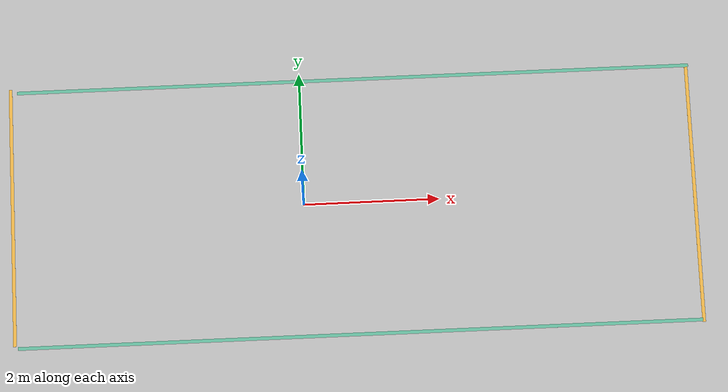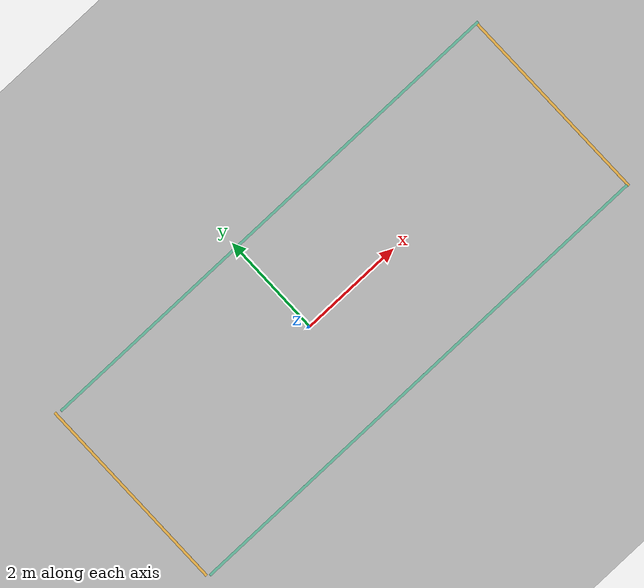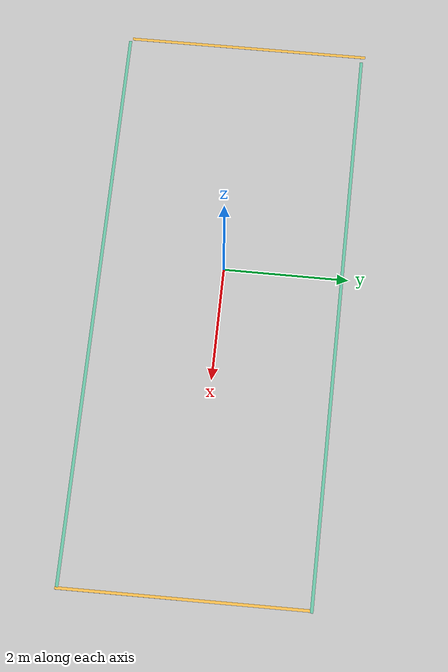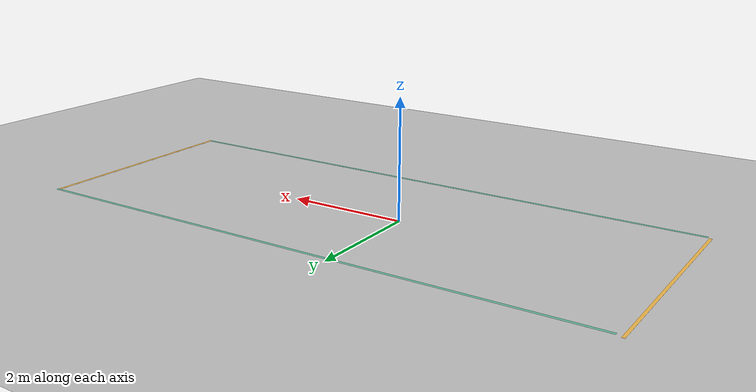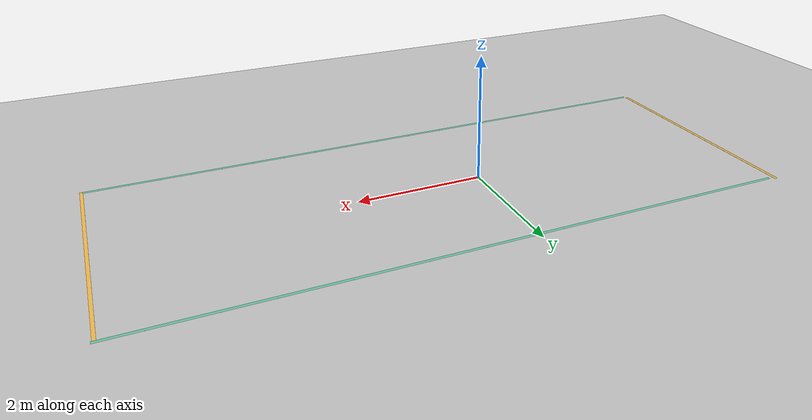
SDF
<sdf version="1.7">
 <world name="default">
  <light name="sun" type="directional">
   <pose>0 0 10 0 -0 0</pose>
   <diffuse>0.8 0.8 0.8 1</diffuse>
   <specular>0.2 0.2 0.2 1</specular>
   <attenuation>
    <range>1000</range>
    <constant>0.9</constant>
    <linear>0.01</linear>
    <quadratic>0.001</quadratic>
   </attenuation>
   <direction>-0.5 0.1 -0.9</direction>
   <spot><inner_angle>0</inner_angle><outer_angle>0</outer_angle><falloff>0</falloff></spot>
  </light>
  <model name="ground_plane">
   <static>1</static>
   <link name="link">
    <collision name="collision">
     <geometry><plane><normal>0 0 1</normal><size>100 100</size></plane></geometry>
     <surface>
      <contact><collide_bitmask>65535</collide_bitmask></contact>
      <friction><ode><mu>100</mu><mu2>50</mu2></ode></friction>
     </surface>
    </collision>
    <visual name="visual">
     <cast_shadows>0</cast_shadows>
     <geometry><plane><normal>0 0 1</normal><size>100 100</size></plane></geometry>
     <material>
      <script><uri>file://media/materials/scripts/gazebo.material</uri><name>Gazebo/Grey</name></script>
     </material>
    </visual>
   </link>
  </model>
  <gravity>0 0 -9.8</gravity>
  <magnetic_field>6e-06 2.3e-05 -4.2e-05</magnetic_field>
  <atmosphere type="adiabatic"/>
  <physics type="ode">
   <max_step_size>0.001</max_step_size>
   <real_time_factor>1</real_time_factor>
   <real_time_update_rate>1000</real_time_update_rate>
  </physics>
  <scene><ambient>0.4 0.4 0.4 1</ambient><background>0.7 0.7 0.7 1</background><shadows>1</shadows></scene>
  <spherical_coordinates>
   <surface_model>EARTH_WGS84</surface_model>
   <latitude_deg>0</latitude_deg>
   <longitude_deg>0</longitude_deg>
   <elevation>0</elevation>
   <heading_deg>0</heading_deg>
  </spherical_coordinates>
  <model name="sari_cizgi">
   <pose>4.45006 0.456853 0 0 -0 0</pose>
   <link name="Wall_0">
    <collision name="Wall_0_Collision">
     <geometry><box><size>3.9 0.05 0.001</size></box></geometry>
     <pose>0 0 0.0005 0 -0 0</pose>
    </collision>
    <visual name="Wall_0_Visual">
     <pose>0 0 0.0005 0 -0 0</pose>
     <geometry><box><size>3.9 0.05 0.001</size></box></geometry>
     <material>
      <script><uri>file://media/materials/scripts/gazebo.material</uri><name>Gazebo/Grey</name></script>
      <ambient>1 0.764706 0.305882 1</ambient>
     </material>
     <meta><layer>0</layer></meta>
    </visual>
    <pose>1.3175 -0.5225 0 0 -0 1.5708</pose>
   </link>
   <static>1</static>
  </model>
  <model name="line_1">
   <pose>0.946484 -1.98492 0 0 -0 0</pose>
   <link name="Wall_0">
    <collision name="Wall_0_Collision">
     <geometry><box><size>10 0.05 5e-05</size></box></geometry>
     <pose>0 0 0.0025 0 -0 0</pose>
    </collision>
    <visual name="Wall_0_Visual">
     <pose>0 0 0.0025 0 -0 0</pose>
     <geometry><box><size>10 0.05 5e-05</size></box></geometry>
     <material>
      <script><uri>file://media/materials/scripts/gazebo.material</uri><name>Gazebo/Grey</name></script>
      <ambient>0.435294 0.796078 0.67451 1</ambient>
     </material>
     <meta><layer>0</layer></meta>
    </visual>
    <pose>-0.194987 -0 0 0 -0 3.14159</pose>
   </link>
   <static>1</static>
  </model>
  <model name="line_1_0">
   <pose>0.999742 1.89321 0 0 -0 0</pose>
   <link name="Wall_0">
    <collision name="Wall_0_Collision">
     <geometry><box><size>10 0.05 5e-05</size></box></geometry>
     <pose>0 0 0.0025 0 -0 0</pose>
    </collision>
    <visual name="Wall_0_Visual">
     <pose>0 0 0.0025 0 -0 0</pose>
     <geometry><box><size>10 0.05 5e-05</size></box></geometry>
     <material>
      <script><uri>file://media/materials/scripts/gazebo.material</uri><name>Gazebo/Grey</name></script>
      <ambient>0.435294 0.796078 0.67451 1</ambient>
     </material>
     <meta><layer>0</layer></meta>
    </visual>
    <pose>-0.194987 -0 0 0 -0 3.14159</pose>
   </link>
   <static>1</static>
  </model>
  <model name="sari_cizgi_0">
   <pose>-5.61176 0.521522 0 0 -0 0</pose>
   <link name="Wall_0">
    <collision name="Wall_0_Collision">
     <geometry><box><size>3.9 0.05 0.001</size></box></geometry>
     <pose>0 0 0.0005 0 -0 0</pose>
    </collision>
    <visual name="Wall_0_Visual">
     <pose>0 0 0.0005 0 -0 0</pose>
     <geometry><box><size>3.9 0.05 0.001</size></box></geometry>
     <material>
      <script><uri>file://media/materials/scripts/gazebo.material</uri><name>Gazebo/Grey</name></script>
      <ambient>1 0.764706 0.305882 1</ambient>
     </material>
     <meta><layer>0</layer></meta>
    </visual>
    <pose>1.3175 -0.5225 0 0 -0 1.5708</pose>
   </link>
   <static>1</static>
  </model>
 </world>
</sdf>
